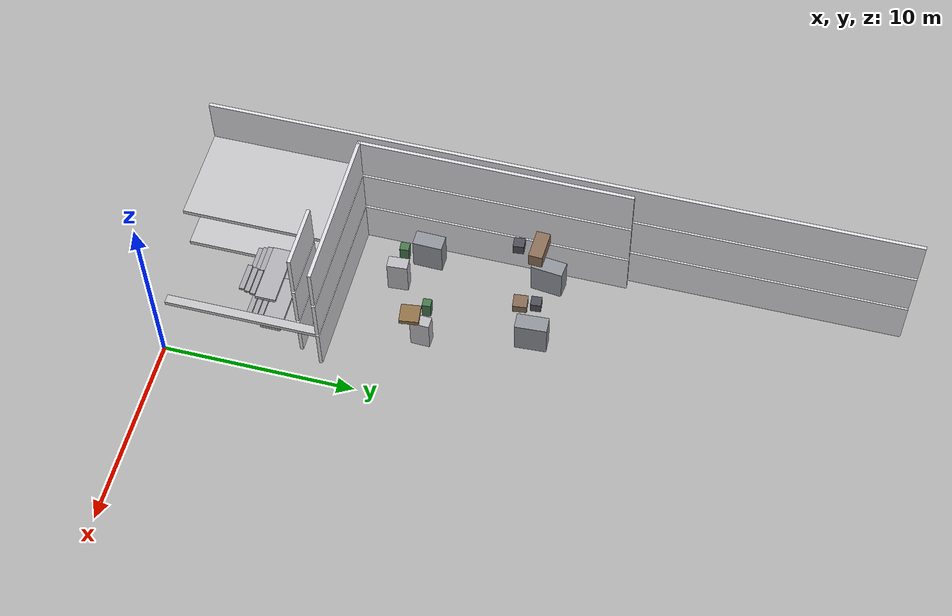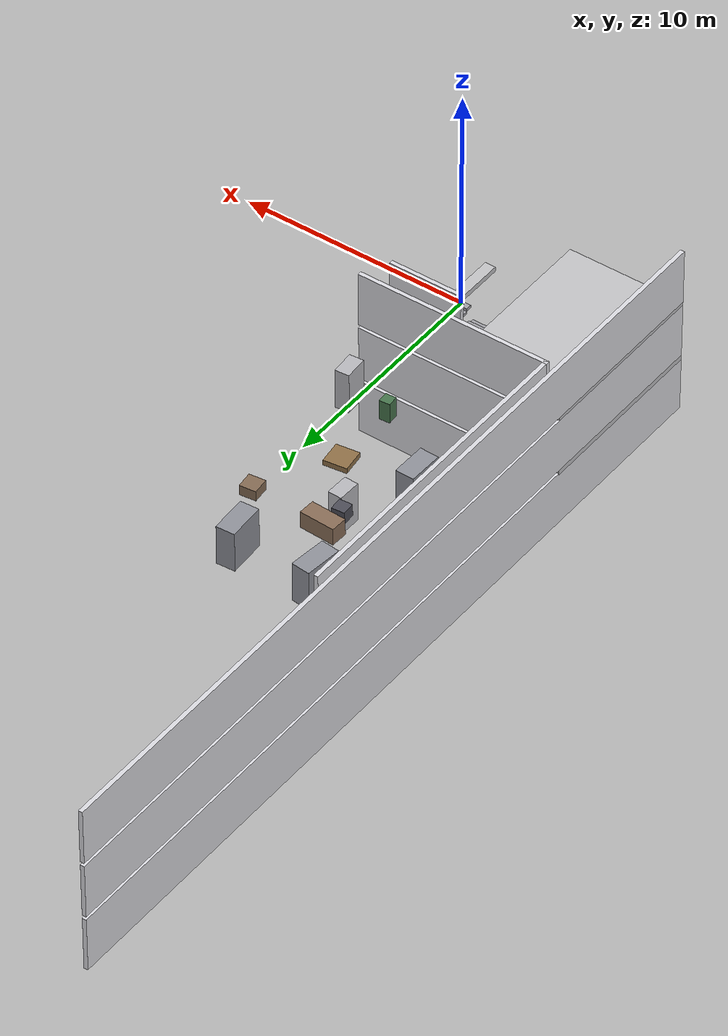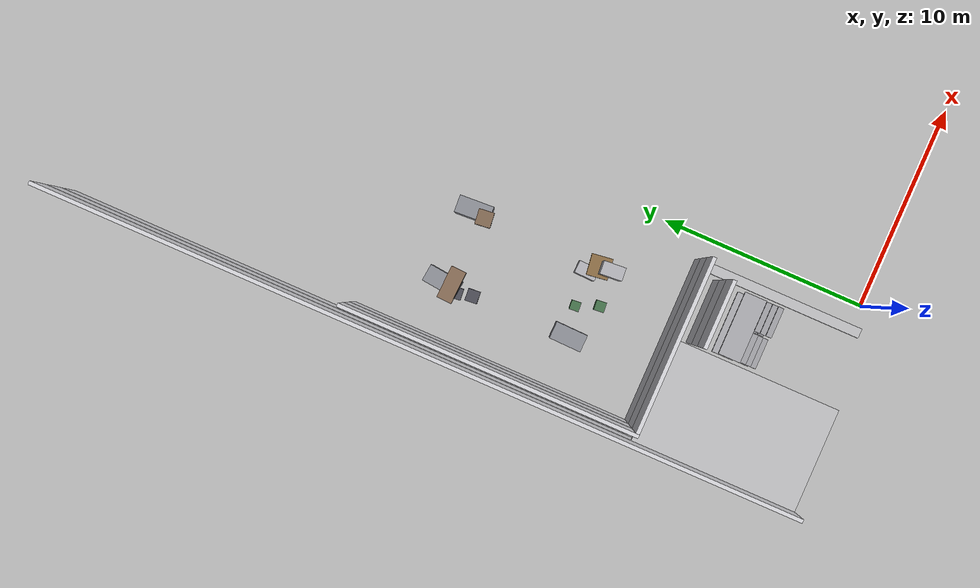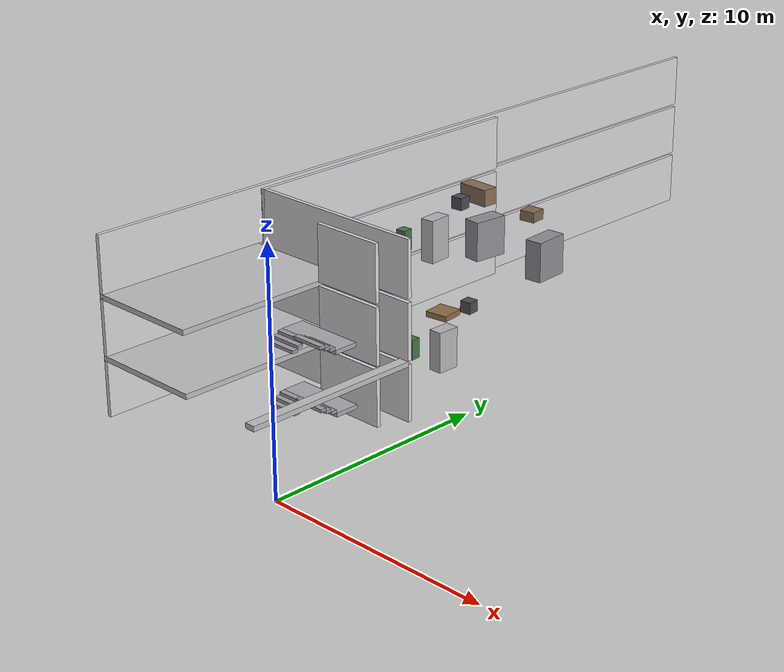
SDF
<sdf version="1.7">
 <model name="generated_building">
  <static>true</static>
  <link name="exterior_west_floor_0">
   <pose>-9.9100 18.0000 1.2250 0.0000 0.0000 0.0000</pose>
   <collision name="exterior_west_floor_0_collision">
    <geometry><box><size>0.1800 36.0000 2.4500</size></box></geometry>
   </collision>
   <visual name="exterior_west_floor_0_visual">
    <geometry><box><size>0.1800 36.0000 2.4500</size></box></geometry>
    <material><ambient>0.86 0.86 0.88 1</ambient><diffuse>0.86 0.86 0.88 1</diffuse></material>
   </visual>
   <gravity>false</gravity>
  </link>
  <link name="floor_0_room_0_west_wall">
   <pose>-9.4100 14.8650 1.2250 0.0000 0.0000 0.0000</pose>
   <collision name="floor_0_room_0_west_wall_collision">
    <geometry><box><size>0.1800 14.0300 2.4500</size></box></geometry>
   </collision>
   <visual name="floor_0_room_0_west_wall_visual">
    <geometry><box><size>0.1800 14.0300 2.4500</size></box></geometry>
    <material><ambient>0.86 0.86 0.88 1</ambient><diffuse>0.86 0.86 0.88 1</diffuse></material>
   </visual>
   <gravity>false</gravity>
  </link>
  <link name="floor_0_room_0_south_wall">
   <pose>-5.3000 7.9400 1.2250 0.0000 0.0000 0.0000</pose>
   <collision name="floor_0_room_0_south_wall_collision">
    <geometry><box><size>8.4000 0.1800 2.4500</size></box></geometry>
   </collision>
   <visual name="floor_0_room_0_south_wall_visual">
    <geometry><box><size>8.4000 0.1800 2.4500</size></box></geometry>
    <material><ambient>0.86 0.86 0.88 1</ambient><diffuse>0.86 0.86 0.88 1</diffuse></material>
   </visual>
   <gravity>false</gravity>
  </link>
  <link name="stair_core_floor_0_north">
   <pose>-3.2500 6.7600 1.2250 0.0000 0.0000 0.0000</pose>
   <collision name="stair_core_floor_0_north_collision">
    <geometry><box><size>3.2000 0.1800 2.4500</size></box></geometry>
   </collision>
   <visual name="stair_core_floor_0_north_visual">
    <geometry><box><size>3.2000 0.1800 2.4500</size></box></geometry>
    <material><ambient>0.86 0.86 0.88 1</ambient><diffuse>0.86 0.86 0.88 1</diffuse></material>
   </visual>
   <gravity>false</gravity>
  </link>
  <link name="floor_0_room_0_chair">
   <pose>-7.04202012 17.6478418 0.28 0 0 0.0865985855</pose>
   <collision name="floor_0_room_0_chair_collision">
    <geometry><box><size>0.5500 0.5500 0.5500</size></box></geometry>
   </collision>
   <visual name="floor_0_room_0_chair_visual">
    <geometry><box><size>0.5500 0.5500 0.5500</size></box></geometry>
    <material><ambient>0.30 0.30 0.34 1</ambient><diffuse>0.30 0.30 0.34 1</diffuse></material>
   </visual>
   <gravity>false</gravity>
  </link>
  <link name="floor_0_room_0_cabinet">
   <pose>-3.67033035 12.5012899 0.9 0 0 -0.0268373285</pose>
   <collision name="floor_0_room_0_cabinet_collision">
    <geometry><box><size>0.6000 1.0000 1.8000</size></box></geometry>
   </collision>
   <visual name="floor_0_room_0_cabinet_visual">
    <geometry><box><size>0.6000 1.0000 1.8000</size></box></geometry>
    <material><ambient>0.72 0.72 0.74 1</ambient><diffuse>0.72 0.72 0.74 1</diffuse></material>
   </visual>
   <gravity>false</gravity>
  </link>
  <link name="floor_0_room_0_planter">
   <pose>-5.36343219 12.3276635 0.45 0 0 0.0756690509</pose>
   <collision name="floor_0_room_0_planter_collision">
    <geometry><box><size>0.4500 0.4500 0.9000</size></box></geometry>
   </collision>
   <visual name="floor_0_room_0_planter_visual">
    <geometry><box><size>0.4500 0.4500 0.9000</size></box></geometry>
    <material><ambient>0.28 0.46 0.30 1</ambient><diffuse>0.28 0.46 0.30 1</diffuse></material>
   </visual>
   <gravity>false</gravity>
  </link>
  <link name="slab_floor_1_1">
   <pose>-7.4700 3.9250 2.4900 0.0000 0.0000 0.0000</pose>
   <collision name="slab_floor_1_1_collision">
    <geometry><box><size>5.0600 7.8500 0.2200</size></box></geometry>
   </collision>
   <visual name="slab_floor_1_1_visual">
    <geometry><box><size>5.0600 7.8500 0.2200</size></box></geometry>
    <material><ambient>0.76 0.76 0.77 1</ambient><diffuse>0.76 0.76 0.77 1</diffuse></material>
   </visual>
   <gravity>false</gravity>
  </link>
  <link name="slab_floor_1_2">
   <pose>-1.3300 3.9250 2.4900 0.0000 0.0000 0.0000</pose>
   <collision name="slab_floor_1_2_collision">
    <geometry><box><size>0.4600 7.8500 0.2200</size></box></geometry>
   </collision>
   <visual name="slab_floor_1_2_visual">
    <geometry><box><size>0.4600 7.8500 0.2200</size></box></geometry>
    <material><ambient>0.76 0.76 0.77 1</ambient><diffuse>0.76 0.76 0.77 1</diffuse></material>
   </visual>
   <gravity>false</gravity>
  </link>
  <link name="exterior_west_floor_1">
   <pose>-9.9100 18.0000 3.8250 0.0000 0.0000 0.0000</pose>
   <collision name="exterior_west_floor_1_collision">
    <geometry><box><size>0.1800 36.0000 2.4500</size></box></geometry>
   </collision>
   <visual name="exterior_west_floor_1_visual">
    <geometry><box><size>0.1800 36.0000 2.4500</size></box></geometry>
    <material><ambient>0.86 0.86 0.88 1</ambient><diffuse>0.86 0.86 0.88 1</diffuse></material>
   </visual>
   <gravity>false</gravity>
  </link>
  <link name="floor_1_room_0_west_wall">
   <pose>-9.4100 14.8650 3.8250 0.0000 0.0000 0.0000</pose>
   <collision name="floor_1_room_0_west_wall_collision">
    <geometry><box><size>0.1800 14.0300 2.4500</size></box></geometry>
   </collision>
   <visual name="floor_1_room_0_west_wall_visual">
    <geometry><box><size>0.1800 14.0300 2.4500</size></box></geometry>
    <material><ambient>0.86 0.86 0.88 1</ambient><diffuse>0.86 0.86 0.88 1</diffuse></material>
   </visual>
   <gravity>false</gravity>
  </link>
  <link name="floor_1_room_0_south_wall">
   <pose>-5.3000 7.9400 3.8250 0.0000 0.0000 0.0000</pose>
   <collision name="floor_1_room_0_south_wall_collision">
    <geometry><box><size>8.4000 0.1800 2.4500</size></box></geometry>
   </collision>
   <visual name="floor_1_room_0_south_wall_visual">
    <geometry><box><size>8.4000 0.1800 2.4500</size></box></geometry>
    <material><ambient>0.86 0.86 0.88 1</ambient><diffuse>0.86 0.86 0.88 1</diffuse></material>
   </visual>
   <gravity>false</gravity>
  </link>
  <link name="stair_core_floor_1_north">
   <pose>-3.2500 6.7600 3.8250 0.0000 0.0000 0.0000</pose>
   <collision name="stair_core_floor_1_north_collision">
    <geometry><box><size>3.2000 0.1800 2.4500</size></box></geometry>
   </collision>
   <visual name="stair_core_floor_1_north_visual">
    <geometry><box><size>3.2000 0.1800 2.4500</size></box></geometry>
    <material><ambient>0.86 0.86 0.88 1</ambient><diffuse>0.86 0.86 0.88 1</diffuse></material>
   </visual>
   <gravity>false</gravity>
  </link>
  <link name="floor_1_room_0_rack_a">
   <pose>-6.73661441 18.3171861 3.5 0 0 -0.105137542</pose>
   <collision name="floor_1_room_0_rack_a_collision">
    <geometry><box><size>0.8000 1.6000 1.8000</size></box></geometry>
   </collision>
   <visual name="floor_1_room_0_rack_a_visual">
    <geometry><box><size>0.8000 1.6000 1.8000</size></box></geometry>
    <material><ambient>0.56 0.57 0.60 1</ambient><diffuse>0.56 0.57 0.60 1</diffuse></material>
   </visual>
   <gravity>false</gravity>
  </link>
  <link name="floor_1_room_0_rack_b">
   <pose>-3.24720876 18.29859 3.5 0 0 0.0591551628</pose>
   <collision name="floor_1_room_0_rack_b_collision">
    <geometry><box><size>0.8000 1.6000 1.8000</size></box></geometry>
   </collision>
   <visual name="floor_1_room_0_rack_b_visual">
    <geometry><box><size>0.8000 1.6000 1.8000</size></box></geometry>
    <material><ambient>0.56 0.57 0.60 1</ambient><diffuse>0.56 0.57 0.60 1</diffuse></material>
   </visual>
   <gravity>false</gravity>
  </link>
  <link name="floor_1_room_0_rack_c">
   <pose>-6.7566702 12.1727291 3.5 0 0 -0.0211116546</pose>
   <collision name="floor_1_room_0_rack_c_collision">
    <geometry><box><size>0.8000 1.5000 1.8000</size></box></geometry>
   </collision>
   <visual name="floor_1_room_0_rack_c_visual">
    <geometry><box><size>0.8000 1.5000 1.8000</size></box></geometry>
    <material><ambient>0.56 0.57 0.60 1</ambient><diffuse>0.56 0.57 0.60 1</diffuse></material>
   </visual>
   <gravity>false</gravity>
  </link>
  <link name="floor_1_room_0_pallet">
   <pose>-3.30303996 12.0847519 2.72 0 0 0.13293715</pose>
   <collision name="floor_1_room_0_pallet_collision">
    <geometry><box><size>1.0000 1.0000 0.2400</size></box></geometry>
   </collision>
   <visual name="floor_1_room_0_pallet_visual">
    <geometry><box><size>1.0000 1.0000 0.2400</size></box></geometry>
    <material><ambient>0.56 0.44 0.28 1</ambient><diffuse>0.56 0.44 0.28 1</diffuse></material>
   </visual>
   <gravity>false</gravity>
  </link>
  <link name="stair_flight_a_floor_0_step_7">
   <pose>-4.0150 4.0000 0.9750 0.0000 0.0000 0.0000</pose>
   <collision name="stair_flight_a_floor_0_step_7_collision">
    <geometry><box><size>1.4300 0.2600 0.1300</size></box></geometry>
   </collision>
   <visual name="stair_flight_a_floor_0_step_7_visual">
    <geometry><box><size>1.4300 0.2600 0.1300</size></box></geometry>
    <material><ambient>0.64 0.64 0.66 1</ambient><diffuse>0.64 0.64 0.66 1</diffuse></material>
   </visual>
   <gravity>false</gravity>
  </link>
  <link name="stair_flight_a_floor_0_step_8">
   <pose>-4.0150 4.2600 1.1050 0.0000 0.0000 0.0000</pose>
   <collision name="stair_flight_a_floor_0_step_8_collision">
    <geometry><box><size>1.4300 0.2600 0.1300</size></box></geometry>
   </collision>
   <visual name="stair_flight_a_floor_0_step_8_visual">
    <geometry><box><size>1.4300 0.2600 0.1300</size></box></geometry>
    <material><ambient>0.64 0.64 0.66 1</ambient><diffuse>0.64 0.64 0.66 1</diffuse></material>
   </visual>
   <gravity>false</gravity>
  </link>
  <link name="stair_flight_a_floor_0_step_9">
   <pose>-4.0150 4.5200 1.2350 0.0000 0.0000 0.0000</pose>
   <collision name="stair_flight_a_floor_0_step_9_collision">
    <geometry><box><size>1.4300 0.2600 0.1300</size></box></geometry>
   </collision>
   <visual name="stair_flight_a_floor_0_step_9_visual">
    <geometry><box><size>1.4300 0.2600 0.1300</size></box></geometry>
    <material><ambient>0.64 0.64 0.66 1</ambient><diffuse>0.64 0.64 0.66 1</diffuse></material>
   </visual>
   <gravity>false</gravity>
  </link>
  <link name="stair_turn_landing_floor_0">
   <pose>-3.2500 5.1750 1.2100 0.0000 0.0000 0.0000</pose>
   <collision name="stair_turn_landing_floor_0_collision">
    <geometry><box><size>3.0200 1.0500 0.1800</size></box></geometry>
   </collision>
   <visual name="stair_turn_landing_floor_0_visual">
    <geometry><box><size>3.0200 1.0500 0.1800</size></box></geometry>
    <material><ambient>0.68 0.68 0.70 1</ambient><diffuse>0.68 0.68 0.70 1</diffuse></material>
   </visual>
   <gravity>false</gravity>
  </link>
  <link name="stair_flight_b_floor_0_step_0">
   <pose>-2.4850 4.5200 1.3650 0.0000 0.0000 0.0000</pose>
   <collision name="stair_flight_b_floor_0_step_0_collision">
    <geometry><box><size>1.4300 0.2600 0.1300</size></box></geometry>
   </collision>
   <visual name="stair_flight_b_floor_0_step_0_visual">
    <geometry><box><size>1.4300 0.2600 0.1300</size></box></geometry>
    <material><ambient>0.64 0.64 0.66 1</ambient><diffuse>0.64 0.64 0.66 1</diffuse></material>
   </visual>
   <gravity>false</gravity>
  </link>
  <link name="stair_flight_b_floor_0_step_1">
   <pose>-2.4850 4.2600 1.4950 0.0000 0.0000 0.0000</pose>
   <collision name="stair_flight_b_floor_0_step_1_collision">
    <geometry><box><size>1.4300 0.2600 0.1300</size></box></geometry>
   </collision>
   <visual name="stair_flight_b_floor_0_step_1_visual">
    <geometry><box><size>1.4300 0.2600 0.1300</size></box></geometry>
    <material><ambient>0.64 0.64 0.66 1</ambient><diffuse>0.64 0.64 0.66 1</diffuse></material>
   </visual>
   <gravity>false</gravity>
  </link>
  <link name="stair_flight_b_floor_0_step_2">
   <pose>-2.4850 4.0000 1.6250 0.0000 0.0000 0.0000</pose>
   <collision name="stair_flight_b_floor_0_step_2_collision">
    <geometry><box><size>1.4300 0.2600 0.1300</size></box></geometry>
   </collision>
   <visual name="stair_flight_b_floor_0_step_2_visual">
    <geometry><box><size>1.4300 0.2600 0.1300</size></box></geometry>
    <material><ambient>0.64 0.64 0.66 1</ambient><diffuse>0.64 0.64 0.66 1</diffuse></material>
   </visual>
   <gravity>false</gravity>
  </link>
  <link name="slab_floor_2_1">
   <pose>-7.4700 3.9250 5.0900 0.0000 0.0000 0.0000</pose>
   <collision name="slab_floor_2_1_collision">
    <geometry><box><size>5.0600 7.8500 0.2200</size></box></geometry>
   </collision>
   <visual name="slab_floor_2_1_visual">
    <geometry><box><size>5.0600 7.8500 0.2200</size></box></geometry>
    <material><ambient>0.76 0.76 0.77 1</ambient><diffuse>0.76 0.76 0.77 1</diffuse></material>
   </visual>
   <gravity>false</gravity>
  </link>
  <link name="exterior_west_floor_2">
   <pose>-9.9100 18.0000 6.4250 0.0000 0.0000 0.0000</pose>
   <collision name="exterior_west_floor_2_collision">
    <geometry><box><size>0.1800 36.0000 2.4500</size></box></geometry>
   </collision>
   <visual name="exterior_west_floor_2_visual">
    <geometry><box><size>0.1800 36.0000 2.4500</size></box></geometry>
    <material><ambient>0.86 0.86 0.88 1</ambient><diffuse>0.86 0.86 0.88 1</diffuse></material>
   </visual>
   <gravity>false</gravity>
  </link>
  <link name="floor_2_room_0_west_wall">
   <pose>-9.4100 14.8650 6.4250 0.0000 0.0000 0.0000</pose>
   <collision name="floor_2_room_0_west_wall_collision">
    <geometry><box><size>0.1800 14.0300 2.4500</size></box></geometry>
   </collision>
   <visual name="floor_2_room_0_west_wall_visual">
    <geometry><box><size>0.1800 14.0300 2.4500</size></box></geometry>
    <material><ambient>0.86 0.86 0.88 1</ambient><diffuse>0.86 0.86 0.88 1</diffuse></material>
   </visual>
   <gravity>false</gravity>
  </link>
  <link name="floor_2_room_0_south_wall">
   <pose>-5.3000 7.9400 6.4250 0.0000 0.0000 0.0000</pose>
   <collision name="floor_2_room_0_south_wall_collision">
    <geometry><box><size>8.4000 0.1800 2.4500</size></box></geometry>
   </collision>
   <visual name="floor_2_room_0_south_wall_visual">
    <geometry><box><size>8.4000 0.1800 2.4500</size></box></geometry>
    <material><ambient>0.86 0.86 0.88 1</ambient><diffuse>0.86 0.86 0.88 1</diffuse></material>
   </visual>
   <gravity>false</gravity>
  </link>
  <link name="stair_core_floor_2_north">
   <pose>-3.2500 6.7600 6.4250 0.0000 0.0000 0.0000</pose>
   <collision name="stair_core_floor_2_north_collision">
    <geometry><box><size>3.2000 0.1800 2.4500</size></box></geometry>
   </collision>
   <visual name="stair_core_floor_2_north_visual">
    <geometry><box><size>3.2000 0.1800 2.4500</size></box></geometry>
    <material><ambient>0.86 0.86 0.88 1</ambient><diffuse>0.86 0.86 0.88 1</diffuse></material>
   </visual>
   <gravity>false</gravity>
  </link>
  <link name="floor_2_room_0_desk">
   <pose>-6.70500522 17.8166297 5.65 0 0 -0.0470481193</pose>
   <collision name="floor_2_room_0_desk_collision">
    <geometry><box><size>1.5000 0.7000 0.7500</size></box></geometry>
   </collision>
   <visual name="floor_2_room_0_desk_visual">
    <geometry><box><size>1.5000 0.7000 0.7500</size></box></geometry>
    <material><ambient>0.54 0.43 0.34 1</ambient><diffuse>0.54 0.43 0.34 1</diffuse></material>
   </visual>
   <gravity>false</gravity>
  </link>
  <link name="floor_2_room_0_chair">
   <pose>-6.78992468 16.7785874 5.48 0 0 0.0836266788</pose>
   <collision name="floor_2_room_0_chair_collision">
    <geometry><box><size>0.5500 0.5500 0.5500</size></box></geometry>
   </collision>
   <visual name="floor_2_room_0_chair_visual">
    <geometry><box><size>0.5500 0.5500 0.5500</size></box></geometry>
    <material><ambient>0.30 0.30 0.34 1</ambient><diffuse>0.30 0.30 0.34 1</diffuse></material>
   </visual>
   <gravity>false</gravity>
  </link>
  <link name="floor_2_room_0_cabinet">
   <pose>-3.35437662 11.6523771 6.1 0 0 0.0746470875</pose>
   <collision name="floor_2_room_0_cabinet_collision">
    <geometry><box><size>0.6000 1.0000 1.8000</size></box></geometry>
   </collision>
   <visual name="floor_2_room_0_cabinet_visual">
    <geometry><box><size>0.6000 1.0000 1.8000</size></box></geometry>
    <material><ambient>0.72 0.72 0.74 1</ambient><diffuse>0.72 0.72 0.74 1</diffuse></material>
   </visual>
   <gravity>false</gravity>
  </link>
  <link name="floor_2_room_0_side_table">
   <pose>-3.46782247 17.6624601 5.52 0 0 0.110891192</pose>
   <collision name="floor_2_room_0_side_table_collision">
    <geometry><box><size>0.7000 0.7000 0.4500</size></box></geometry>
   </collision>
   <visual name="floor_2_room_0_side_table_visual">
    <geometry><box><size>0.7000 0.7000 0.4500</size></box></geometry>
    <material><ambient>0.52 0.42 0.33 1</ambient><diffuse>0.52 0.42 0.33 1</diffuse></material>
   </visual>
   <gravity>false</gravity>
  </link>
  <link name="floor_2_room_0_planter">
   <pose>-4.96289891 11.5042169 5.65 0 0 0.0823595939</pose>
   <collision name="floor_2_room_0_planter_collision">
    <geometry><box><size>0.4500 0.4500 0.9000</size></box></geometry>
   </collision>
   <visual name="floor_2_room_0_planter_visual">
    <geometry><box><size>0.4500 0.4500 0.9000</size></box></geometry>
    <material><ambient>0.28 0.46 0.30 1</ambient><diffuse>0.28 0.46 0.30 1</diffuse></material>
   </visual>
   <gravity>false</gravity>
  </link>
  <link name="stair_flight_a_floor_1_step_7">
   <pose>-4.0150 4.0000 3.5750 0.0000 0.0000 0.0000</pose>
   <collision name="stair_flight_a_floor_1_step_7_collision">
    <geometry><box><size>1.4300 0.2600 0.1300</size></box></geometry>
   </collision>
   <visual name="stair_flight_a_floor_1_step_7_visual">
    <geometry><box><size>1.4300 0.2600 0.1300</size></box></geometry>
    <material><ambient>0.64 0.64 0.66 1</ambient><diffuse>0.64 0.64 0.66 1</diffuse></material>
   </visual>
   <gravity>false</gravity>
  </link>
  <link name="stair_flight_a_floor_1_step_8">
   <pose>-4.0150 4.2600 3.7050 0.0000 0.0000 0.0000</pose>
   <collision name="stair_flight_a_floor_1_step_8_collision">
    <geometry><box><size>1.4300 0.2600 0.1300</size></box></geometry>
   </collision>
   <visual name="stair_flight_a_floor_1_step_8_visual">
    <geometry><box><size>1.4300 0.2600 0.1300</size></box></geometry>
    <material><ambient>0.64 0.64 0.66 1</ambient><diffuse>0.64 0.64 0.66 1</diffuse></material>
   </visual>
   <gravity>false</gravity>
  </link>
  <link name="stair_flight_a_floor_1_step_9">
   <pose>-4.0150 4.5200 3.8350 0.0000 0.0000 0.0000</pose>
   <collision name="stair_flight_a_floor_1_step_9_collision">
    <geometry><box><size>1.4300 0.2600 0.1300</size></box></geometry>
   </collision>
   <visual name="stair_flight_a_floor_1_step_9_visual">
    <geometry><box><size>1.4300 0.2600 0.1300</size></box></geometry>
    <material><ambient>0.64 0.64 0.66 1</ambient><diffuse>0.64 0.64 0.66 1</diffuse></material>
   </visual>
   <gravity>false</gravity>
  </link>
  <link name="stair_turn_landing_floor_1">
   <pose>-3.2500 5.1750 3.8100 0.0000 0.0000 0.0000</pose>
   <collision name="stair_turn_landing_floor_1_collision">
    <geometry><box><size>3.0200 1.0500 0.1800</size></box></geometry>
   </collision>
   <visual name="stair_turn_landing_floor_1_visual">
    <geometry><box><size>3.0200 1.0500 0.1800</size></box></geometry>
    <material><ambient>0.68 0.68 0.70 1</ambient><diffuse>0.68 0.68 0.70 1</diffuse></material>
   </visual>
   <gravity>false</gravity>
  </link>
  <link name="stair_flight_b_floor_1_step_0">
   <pose>-2.4850 4.5200 3.9650 0.0000 0.0000 0.0000</pose>
   <collision name="stair_flight_b_floor_1_step_0_collision">
    <geometry><box><size>1.4300 0.2600 0.1300</size></box></geometry>
   </collision>
   <visual name="stair_flight_b_floor_1_step_0_visual">
    <geometry><box><size>1.4300 0.2600 0.1300</size></box></geometry>
    <material><ambient>0.64 0.64 0.66 1</ambient><diffuse>0.64 0.64 0.66 1</diffuse></material>
   </visual>
   <gravity>false</gravity>
  </link>
  <link name="stair_flight_b_floor_1_step_1">
   <pose>-2.4850 4.2600 4.0950 0.0000 0.0000 0.0000</pose>
   <collision name="stair_flight_b_floor_1_step_1_collision">
    <geometry><box><size>1.4300 0.2600 0.1300</size></box></geometry>
   </collision>
   <visual name="stair_flight_b_floor_1_step_1_visual">
    <geometry><box><size>1.4300 0.2600 0.1300</size></box></geometry>
    <material><ambient>0.64 0.64 0.66 1</ambient><diffuse>0.64 0.64 0.66 1</diffuse></material>
   </visual>
   <gravity>false</gravity>
  </link>
  <link name="stair_flight_b_floor_1_step_2">
   <pose>-2.4850 4.0000 4.2250 0.0000 0.0000 0.0000</pose>
   <collision name="stair_flight_b_floor_1_step_2_collision">
    <geometry><box><size>1.4300 0.2600 0.1300</size></box></geometry>
   </collision>
   <visual name="stair_flight_b_floor_1_step_2_visual">
    <geometry><box><size>1.4300 0.2600 0.1300</size></box></geometry>
    <material><ambient>0.64 0.64 0.66 1</ambient><diffuse>0.64 0.64 0.66 1</diffuse></material>
   </visual>
   <gravity>false</gravity>
  </link>
 </model>
</sdf>
